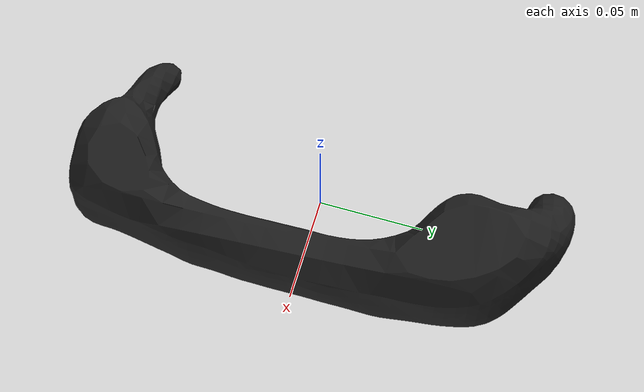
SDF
<?xml version="1.0" ?>
<sdf version='1.4'>
  <model name='handle_model'>
    <link name='handle'>
      <pose>0 0 0 0 -0 0</pose>
      <inertial>
        <pose>0 0.012 0 0 -0 0</pose>
        <mass>0.2</mass>
        <inertia>
          <ixx>1</ixx>
          <ixy>0</ixy>
          <ixz>0</ixz>
          <iyy>1</iyy>
          <iyz>0</iyz>
          <izz>1</izz>
        </inertia>
      </inertial>
      <collision name='handle_collision'>
        <pose>0 0 0 1.57 -5.55112e-17 1.57</pose>
        <geometry>
          <mesh>
            <scale>1 1 1</scale>
            <uri>model://handle//meshes//handle.dae</uri>
          </mesh>
        </geometry>
        <surface>
          <contact>
            <ode/>
          </contact>
          <friction>
            <ode/>
          </friction>
        </surface>
      </collision>
      <visual name='handle_visual'>
        <pose>0 0 0 1.57 -5.55112e-17 1.57</pose>
        <geometry>
          <mesh>
            <scale>1 1 1</scale>
            <uri>model://handle//meshes//handle.dae</uri>
          </mesh>
        </geometry>
        <material>
          <script>
            <name>Gazebo/Black</name>
            <uri>__default__</uri>
          </script>
        </material>
      </visual>
    </link>
  </model>
</sdf>
